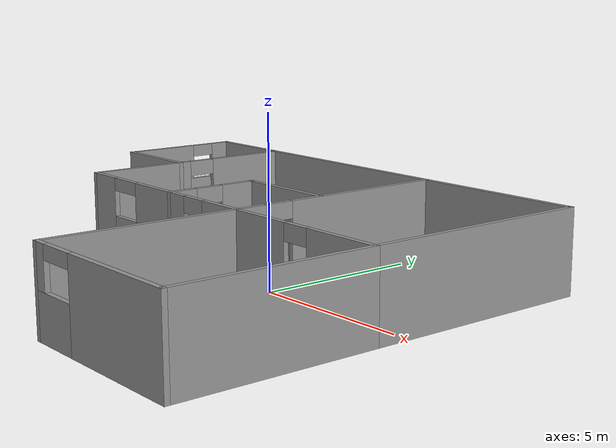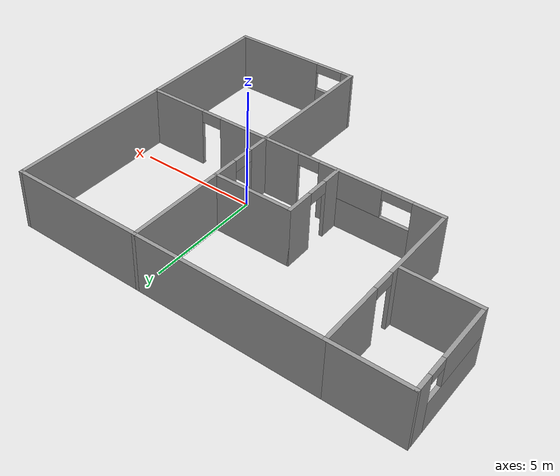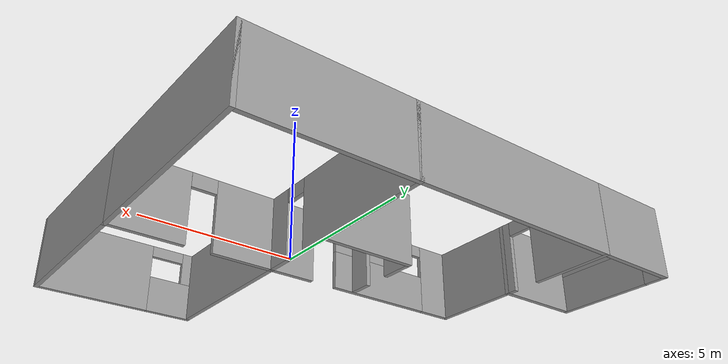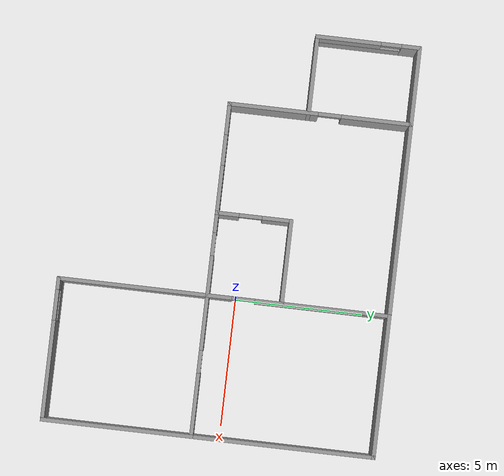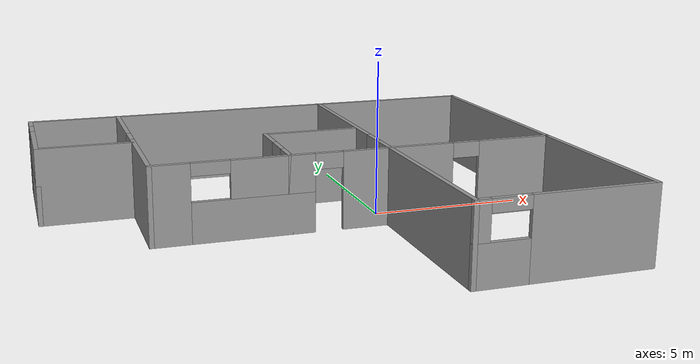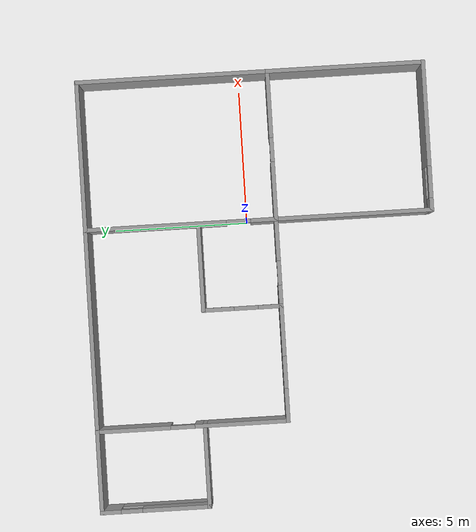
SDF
<?xml version='1.0'?>
<sdf version='1.6'>
  <model name='House'>
    <pose frame=''>-2.5 -0.45 0 0 -0 0</pose>
    <link name='Wall_100'>
      <collision name='Wall_100_Collision'>
        <geometry>
          <box>
            <size>3.38 0.15 2.5</size>
          </box>
        </geometry>
        <pose frame=''>0 0 1.25 0 -0 0</pose>
      </collision>
      <visual name='Wall_100_Visual'>
        <pose frame=''>0 0 1.25 0 -0 0</pose>
        <geometry>
          <box>
            <size>3.38 0.15 2.5</size>
          </box>
        </geometry>
        <material>
          <script>
            <uri>file://media/materials/scripts/gazebo.material</uri>
            <name>Gazebo/Grey</name>
          </script>
          <ambient>1 1 1 1</ambient>
        </material>
        <meta>
          <layer>0</layer>
        </meta>
      </visual>
      <pose frame=''>0.885 2.25 0 0 -0 0</pose>
    </link>
    <link name='Wall_103'>
      <collision name='Wall_103_Collision'>
        <geometry>
          <box>
            <size>3.15 0.15 2.5</size>
          </box>
        </geometry>
        <pose frame=''>0 0 1.25 0 -0 0</pose>
      </collision>
      <visual name='Wall_103_Visual'>
        <pose frame=''>0 0 1.25 0 -0 0</pose>
        <geometry>
          <box>
            <size>3.15 0.15 2.5</size>
          </box>
        </geometry>
        <material>
          <script>
            <uri>file://media/materials/scripts/gazebo.material</uri>
            <name>Gazebo/Grey</name>
          </script>
          <ambient>1 1 1 1</ambient>
        </material>
        <meta>
          <layer>0</layer>
        </meta>
      </visual>
      <pose frame=''>-6.5 6.45 0 0 -0 3.14159</pose>
    </link>
    <link name='Wall_107'>
      <pose frame=''>-8 4.45 0 0 0 -1.5708</pose>
      <visual name='Wall_107_Visual_0'>
        <pose frame=''>-1.68247 0 1.25 0 -0 0</pose>
        <geometry>
          <box>
            <size>0.785055 0.15 2.5</size>
          </box>
        </geometry>
        <material>
          <script>
            <uri>file://media/materials/scripts/gazebo.material</uri>
            <name>Gazebo/Grey</name>
          </script>
          <ambient>1 1 1 1</ambient>
        </material>
        <meta>
          <layer>0</layer>
        </meta>
      </visual>
      <collision name='Wall_107_Collision_0'>
        <geometry>
          <box>
            <size>0.785055 0.15 2.5</size>
          </box>
        </geometry>
        <pose frame=''>-1.68247 0 1.25 0 -0 0</pose>
      </collision>
      <visual name='Wall_107_Visual_1'>
        <pose frame=''>0.392528 0 0.65 0 -0 0</pose>
        <geometry>
          <box>
            <size>3.36495 0.15 1.3</size>
          </box>
        </geometry>
        <material>
          <script>
            <uri>file://media/materials/scripts/gazebo.material</uri>
            <name>Gazebo/Grey</name>
          </script>
          <ambient>1 1 1 1</ambient>
        </material>
        <meta>
          <layer>0</layer>
        </meta>
      </visual>
      <collision name='Wall_107_Collision_1'>
        <geometry>
          <box>
            <size>3.36495 0.15 1.3</size>
          </box>
        </geometry>
        <pose frame=''>0.392528 0 0.65 0 -0 0</pose>
      </collision>
      <visual name='Wall_107_Visual_2'>
        <pose frame=''>0.792528 0 1.9 0 -0 0</pose>
        <geometry>
          <box>
            <size>2.56494 0.15 1.2</size>
          </box>
        </geometry>
        <material>
          <script>
            <uri>file://media/materials/scripts/gazebo.material</uri>
            <name>Gazebo/Grey</name>
          </script>
          <ambient>1 1 1 1</ambient>
        </material>
        <meta>
          <layer>0</layer>
        </meta>
      </visual>
      <collision name='Wall_107_Collision_2'>
        <geometry>
          <box>
            <size>2.56494 0.15 1.2</size>
          </box>
        </geometry>
        <pose frame=''>0.792528 0 1.9 0 -0 0</pose>
      </collision>
      <visual name='Wall_107_Visual_3'>
        <pose frame=''>-0.889945 0 2.3 0 -0 0</pose>
        <geometry>
          <box>
            <size>0.8 0.15 0.4</size>
          </box>
        </geometry>
        <material>
          <script>
            <uri>file://media/materials/scripts/gazebo.material</uri>
            <name>Gazebo/Grey</name>
          </script>
          <ambient>1 1 1 1</ambient>
        </material>
        <meta>
          <layer>0</layer>
        </meta>
      </visual>
      <collision name='Wall_107_Collision_3'>
        <geometry>
          <box>
            <size>0.8 0.15 0.4</size>
          </box>
        </geometry>
        <pose frame=''>-0.889945 0 2.3 0 -0 0</pose>
      </collision>
    </link>
    <link name='Wall_109'>
      <collision name='Wall_109_Collision'>
        <geometry>
          <box>
            <size>3.15 0.15 2.5</size>
          </box>
        </geometry>
        <pose frame=''>0 0 1.25 0 -0 0</pose>
      </collision>
      <visual name='Wall_109_Visual'>
        <pose frame=''>0 0 1.25 0 -0 0</pose>
        <geometry>
          <box>
            <size>3.15 0.15 2.5</size>
          </box>
        </geometry>
        <material>
          <script>
            <uri>file://media/materials/scripts/gazebo.material</uri>
            <name>Gazebo/Grey</name>
          </script>
          <ambient>1 1 1 1</ambient>
        </material>
        <meta>
          <layer>0</layer>
        </meta>
      </visual>
      <pose frame=''>-6.5 2.45 0 0 -0 0</pose>
    </link>
    <link name='Wall_77'>
      <collision name='Wall_77_Collision'>
        <geometry>
          <box>
            <size>7.65 0.15 2.5</size>
          </box>
        </geometry>
        <pose frame=''>0 0 1.25 0 -0 0</pose>
      </collision>
      <visual name='Wall_77_Visual'>
        <pose frame=''>0 0 1.25 0 -0 0</pose>
        <geometry>
          <box>
            <size>7.65 0.15 2.5</size>
          </box>
        </geometry>
        <material>
          <script>
            <uri>file://media/materials/scripts/gazebo.material</uri>
            <name>Gazebo/Grey</name>
          </script>
          <ambient>1 1 1 1</ambient>
        </material>
        <meta>
          <layer>0</layer>
        </meta>
      </visual>
      <pose frame=''>-1.25 6.45 0 0 -0 0</pose>
    </link>
    <link name='Wall_79'>
      <collision name='Wall_79_Collision'>
        <geometry>
          <box>
            <size>5.65 0.15 2.5</size>
          </box>
        </geometry>
        <pose frame=''>0 0 1.25 0 -0 0</pose>
      </collision>
      <visual name='Wall_79_Visual'>
        <pose frame=''>0 0 1.25 0 -0 0</pose>
        <geometry>
          <box>
            <size>5.65 0.15 2.5</size>
          </box>
        </geometry>
        <material>
          <script>
            <uri>file://media/materials/scripts/gazebo.material</uri>
            <name>Gazebo/Grey</name>
          </script>
          <ambient>1 1 1 1</ambient>
        </material>
        <meta>
          <layer>0</layer>
        </meta>
      </visual>
      <pose frame=''>5.25 6.45 0 0 -0 0</pose>
    </link>
    <link name='Wall_81'>
      <collision name='Wall_81_Collision'>
        <geometry>
          <box>
            <size>7.25 0.15 2.5</size>
          </box>
        </geometry>
        <pose frame=''>0 0 1.25 0 -0 0</pose>
      </collision>
      <visual name='Wall_81_Visual'>
        <pose frame=''>0 0 1.25 0 -0 0</pose>
        <geometry>
          <box>
            <size>7.25 0.15 2.5</size>
          </box>
        </geometry>
        <material>
          <script>
            <uri>file://media/materials/scripts/gazebo.material</uri>
            <name>Gazebo/Grey</name>
          </script>
          <ambient>1 1 1 1</ambient>
        </material>
        <meta>
          <layer>0</layer>
        </meta>
      </visual>
      <pose frame=''>8 2.9 0 0 0 -1.5708</pose>
    </link>
    <link name='Wall_83'>
      <collision name='Wall_83_Collision'>
        <geometry>
          <box>
            <size>5.95 0.15 2.5</size>
          </box>
        </geometry>
        <pose frame=''>0 0 1.25 0 -0 0</pose>
      </collision>
      <visual name='Wall_83_Visual'>
        <pose frame=''>0 0 1.25 0 -0 0</pose>
        <geometry>
          <box>
            <size>5.95 0.15 2.5</size>
          </box>
        </geometry>
        <material>
          <script>
            <uri>file://media/materials/scripts/gazebo.material</uri>
            <name>Gazebo/Grey</name>
          </script>
          <ambient>1 1 1 1</ambient>
        </material>
        <meta>
          <layer>0</layer>
        </meta>
      </visual>
      <pose frame=''>8 -3.55 0 0 0 -1.5708</pose>
    </link>
    <link name='Wall_85'>
      <pose frame=''>5.25 -6.45 0 0 -0 3.14159</pose>
      <visual name='Wall_85_Visual_0'>
        <pose frame=''>-0.855868 0 1.25 0 -0 0</pose>
        <geometry>
          <box>
            <size>3.93826 0.15 2.5</size>
          </box>
        </geometry>
        <material>
          <script>
            <uri>file://media/materials/scripts/gazebo.material</uri>
            <name>Gazebo/Grey</name>
          </script>
          <ambient>1 1 1 1</ambient>
        </material>
        <meta>
          <layer>0</layer>
        </meta>
      </visual>
      <collision name='Wall_85_Collision_0'>
        <geometry>
          <box>
            <size>3.93826 0.15 2.5</size>
          </box>
        </geometry>
        <pose frame=''>-0.855868 0 1.25 0 -0 0</pose>
      </collision>
      <visual name='Wall_85_Visual_1'>
        <pose frame=''>1.96913 0 0.65 0 -0 0</pose>
        <geometry>
          <box>
            <size>1.71174 0.15 1.3</size>
          </box>
        </geometry>
        <material>
          <script>
            <uri>file://media/materials/scripts/gazebo.material</uri>
            <name>Gazebo/Grey</name>
          </script>
          <ambient>1 1 1 1</ambient>
        </material>
        <meta>
          <layer>0</layer>
        </meta>
      </visual>
      <collision name='Wall_85_Collision_1'>
        <geometry>
          <box>
            <size>1.71174 0.15 1.3</size>
          </box>
        </geometry>
        <pose frame=''>1.96913 0 0.65 0 -0 0</pose>
      </collision>
      <visual name='Wall_85_Visual_2'>
        <pose frame=''>2.56913 0 1.9 0 -0 0</pose>
        <geometry>
          <box>
            <size>0.511736 0.15 1.2</size>
          </box>
        </geometry>
        <material>
          <script>
            <uri>file://media/materials/scripts/gazebo.material</uri>
            <name>Gazebo/Grey</name>
          </script>
          <ambient>1 1 1 1</ambient>
        </material>
        <meta>
          <layer>0</layer>
        </meta>
      </visual>
      <collision name='Wall_85_Collision_2'>
        <geometry>
          <box>
            <size>0.511736 0.15 1.2</size>
          </box>
        </geometry>
        <pose frame=''>2.56913 0 1.9 0 -0 0</pose>
      </collision>
      <visual name='Wall_85_Visual_3'>
        <pose frame=''>1.71326 0 2.3 0 -0 0</pose>
        <geometry>
          <box>
            <size>1.2 0.15 0.4</size>
          </box>
        </geometry>
        <material>
          <script>
            <uri>file://media/materials/scripts/gazebo.material</uri>
            <name>Gazebo/Grey</name>
          </script>
          <ambient>1 1 1 1</ambient>
        </material>
        <meta>
          <layer>0</layer>
        </meta>
      </visual>
      <collision name='Wall_85_Collision_3'>
        <geometry>
          <box>
            <size>1.2 0.15 0.4</size>
          </box>
        </geometry>
        <pose frame=''>1.71326 0 2.3 0 -0 0</pose>
      </collision>
    </link>
    <link name='Wall_87'>
      <collision name='Wall_87_Collision'>
        <geometry>
          <box>
            <size>5.95 0.15 2.5</size>
          </box>
        </geometry>
        <pose frame=''>0 0 1.25 0 -0 0</pose>
      </collision>
      <visual name='Wall_87_Visual'>
        <pose frame=''>0 0 1.25 0 -0 0</pose>
        <geometry>
          <box>
            <size>5.95 0.15 2.5</size>
          </box>
        </geometry>
        <material>
          <script>
            <uri>file://media/materials/scripts/gazebo.material</uri>
            <name>Gazebo/Grey</name>
          </script>
          <ambient>1 1 1 1</ambient>
        </material>
        <meta>
          <layer>0</layer>
        </meta>
      </visual>
      <pose frame=''>2.5 -3.55 0 0 -0 1.5708</pose>
    </link>
    <link name='Wall_89'>
      <pose frame=''>5.25 -0.65 0 0 -0 0</pose>
      <visual name='Wall_89_Visual_0'>
        <pose frame=''>-1.72046 0 1.25 0 -0 0</pose>
        <geometry>
          <box>
            <size>2.20908 0.15 2.5</size>
          </box>
        </geometry>
        <material>
          <script>
            <uri>file://media/materials/scripts/gazebo.material</uri>
            <name>Gazebo/Grey</name>
          </script>
          <ambient>1 1 1 1</ambient>
        </material>
        <meta>
          <layer>0</layer>
        </meta>
      </visual>
      <collision name='Wall_89_Collision_0'>
        <geometry>
          <box>
            <size>2.20908 0.15 2.5</size>
          </box>
        </geometry>
        <pose frame=''>-1.72046 0 1.25 0 -0 0</pose>
      </collision>
      <visual name='Wall_89_Visual_1'>
        <pose frame=''>1.55454 0 1.25 0 -0 0</pose>
        <geometry>
          <box>
            <size>2.54092 0.15 2.5</size>
          </box>
        </geometry>
        <material>
          <script>
            <uri>file://media/materials/scripts/gazebo.material</uri>
            <name>Gazebo/Grey</name>
          </script>
          <ambient>1 1 1 1</ambient>
        </material>
        <meta>
          <layer>0</layer>
        </meta>
      </visual>
      <collision name='Wall_89_Collision_1'>
        <geometry>
          <box>
            <size>2.54092 0.15 2.5</size>
          </box>
        </geometry>
        <pose frame=''>1.55454 0 1.25 0 -0 0</pose>
      </collision>
      <visual name='Wall_89_Visual_2'>
        <pose frame=''>-0.165924 0 2.25 0 -0 0</pose>
        <geometry>
          <box>
            <size>0.9 0.15 0.5</size>
          </box>
        </geometry>
        <material>
          <script>
            <uri>file://media/materials/scripts/gazebo.material</uri>
            <name>Gazebo/Grey</name>
          </script>
          <ambient>1 1 1 1</ambient>
        </material>
        <meta>
          <layer>0</layer>
        </meta>
      </visual>
      <collision name='Wall_89_Collision_2'>
        <geometry>
          <box>
            <size>0.9 0.15 0.5</size>
          </box>
        </geometry>
        <pose frame=''>-0.165924 0 2.25 0 -0 0</pose>
      </collision>
    </link>
    <link name='Wall_91'>
      <pose frame=''>2.5 2.9 0 0 -0 1.5708</pose>
      <visual name='Wall_91_Visual_0'>
        <pose frame=''>-3.11155 0 1.25 0 -0 0</pose>
        <geometry>
          <box>
            <size>1.0269 0.15 2.5</size>
          </box>
        </geometry>
        <material>
          <script>
            <uri>file://media/materials/scripts/gazebo.material</uri>
            <name>Gazebo/Grey</name>
          </script>
          <ambient>1 1 1 1</ambient>
        </material>
        <meta>
          <layer>0</layer>
        </meta>
      </visual>
      <collision name='Wall_91_Collision_0'>
        <geometry>
          <box>
            <size>1.0269 0.15 2.5</size>
          </box>
        </geometry>
        <pose frame=''>-3.11155 0 1.25 0 -0 0</pose>
      </collision>
      <visual name='Wall_91_Visual_1'>
        <pose frame=''>0.96345 0 1.25 0 -0 0</pose>
        <geometry>
          <box>
            <size>5.3231 0.15 2.5</size>
          </box>
        </geometry>
        <material>
          <script>
            <uri>file://media/materials/scripts/gazebo.material</uri>
            <name>Gazebo/Grey</name>
          </script>
          <ambient>1 1 1 1</ambient>
        </material>
        <meta>
          <layer>0</layer>
        </meta>
      </visual>
      <collision name='Wall_91_Collision_1'>
        <geometry>
          <box>
            <size>5.3231 0.15 2.5</size>
          </box>
        </geometry>
        <pose frame=''>0.96345 0 1.25 0 -0 0</pose>
      </collision>
      <visual name='Wall_91_Visual_2'>
        <pose frame=''>-2.1481 0 2.25 0 -0 0</pose>
        <geometry>
          <box>
            <size>0.9 0.15 0.5</size>
          </box>
        </geometry>
        <material>
          <script>
            <uri>file://media/materials/scripts/gazebo.material</uri>
            <name>Gazebo/Grey</name>
          </script>
          <ambient>1 1 1 1</ambient>
        </material>
        <meta>
          <layer>0</layer>
        </meta>
      </visual>
      <collision name='Wall_91_Collision_2'>
        <geometry>
          <box>
            <size>0.9 0.15 0.5</size>
          </box>
        </geometry>
        <pose frame=''>-2.1481 0 2.25 0 -0 0</pose>
      </collision>
    </link>
    <link name='Wall_93'>
      <pose frame=''>-5 2.9 0 0 0 -1.5708</pose>
      <visual name='Wall_93_Visual_0'>
        <pose frame=''>-2.22291 0 1.25 0 -0 0</pose>
        <geometry>
          <box>
            <size>2.80417 0.15 2.5</size>
          </box>
        </geometry>
        <material>
          <script>
            <uri>file://media/materials/scripts/gazebo.material</uri>
            <name>Gazebo/Grey</name>
          </script>
          <ambient>1 1 1 1</ambient>
        </material>
        <meta>
          <layer>0</layer>
        </meta>
      </visual>
      <collision name='Wall_93_Collision_0'>
        <geometry>
          <box>
            <size>2.80417 0.15 2.5</size>
          </box>
        </geometry>
        <pose frame=''>-2.22291 0 1.25 0 -0 0</pose>
      </collision>
      <visual name='Wall_93_Visual_1'>
        <pose frame=''>1.85209 0 1.25 0 -0 0</pose>
        <geometry>
          <box>
            <size>3.54583 0.15 2.5</size>
          </box>
        </geometry>
        <material>
          <script>
            <uri>file://media/materials/scripts/gazebo.material</uri>
            <name>Gazebo/Grey</name>
          </script>
          <ambient>1 1 1 1</ambient>
        </material>
        <meta>
          <layer>0</layer>
        </meta>
      </visual>
      <collision name='Wall_93_Collision_1'>
        <geometry>
          <box>
            <size>3.54583 0.15 2.5</size>
          </box>
        </geometry>
        <pose frame=''>1.85209 0 1.25 0 -0 0</pose>
      </collision>
      <visual name='Wall_93_Visual_2'>
        <pose frame=''>-0.370826 0 2.25 0 -0 0</pose>
        <geometry>
          <box>
            <size>0.9 0.15 0.5</size>
          </box>
        </geometry>
        <material>
          <script>
            <uri>file://media/materials/scripts/gazebo.material</uri>
            <name>Gazebo/Grey</name>
          </script>
          <ambient>1 1 1 1</ambient>
        </material>
        <meta>
          <layer>0</layer>
        </meta>
      </visual>
      <collision name='Wall_93_Collision_2'>
        <geometry>
          <box>
            <size>0.9 0.15 0.5</size>
          </box>
        </geometry>
        <pose frame=''>-0.370826 0 2.25 0 -0 0</pose>
      </collision>
    </link>
    <link name='Wall_95'>
      <pose frame=''>-1.25 -0.65 0 0 -0 0</pose>
      <visual name='Wall_95_Visual_0'>
        <pose frame=''>-3.1837 0 1.25 0 -0 0</pose>
        <geometry>
          <box>
            <size>1.2826 0.15 2.5</size>
          </box>
        </geometry>
        <material>
          <script>
            <uri>file://media/materials/scripts/gazebo.material</uri>
            <name>Gazebo/Grey</name>
          </script>
          <ambient>1 1 1 1</ambient>
        </material>
        <meta>
          <layer>0</layer>
        </meta>
      </visual>
      <collision name='Wall_95_Collision_0'>
        <geometry>
          <box>
            <size>1.2826 0.15 2.5</size>
          </box>
        </geometry>
        <pose frame=''>-3.1837 0 1.25 0 -0 0</pose>
      </collision>
      <visual name='Wall_95_Visual_1'>
        <pose frame=''>3.01052 0 1.25 0 -0 0</pose>
        <geometry>
          <box>
            <size>1.62897 0.15 2.5</size>
          </box>
        </geometry>
        <material>
          <script>
            <uri>file://media/materials/scripts/gazebo.material</uri>
            <name>Gazebo/Grey</name>
          </script>
          <ambient>1 1 1 1</ambient>
        </material>
        <meta>
          <layer>0</layer>
        </meta>
      </visual>
      <collision name='Wall_95_Collision_1'>
        <geometry>
          <box>
            <size>1.62897 0.15 2.5</size>
          </box>
        </geometry>
        <pose frame=''>3.01052 0 1.25 0 -0 0</pose>
      </collision>
      <visual name='Wall_95_Visual_2'>
        <pose frame=''>-0.623182 0 0.65 0 -0 0</pose>
        <geometry>
          <box>
            <size>3.83843 0.15 1.3</size>
          </box>
        </geometry>
        <material>
          <script>
            <uri>file://media/materials/scripts/gazebo.material</uri>
            <name>Gazebo/Grey</name>
          </script>
          <ambient>1 1 1 1</ambient>
        </material>
        <meta>
          <layer>0</layer>
        </meta>
      </visual>
      <collision name='Wall_95_Collision_2'>
        <geometry>
          <box>
            <size>3.83843 0.15 1.3</size>
          </box>
        </geometry>
        <pose frame=''>-0.623182 0 0.65 0 -0 0</pose>
      </collision>
      <visual name='Wall_95_Visual_3'>
        <pose frame=''>-0.023182 0 1.9 0 -0 0</pose>
        <geometry>
          <box>
            <size>2.63843 0.15 1.2</size>
          </box>
        </geometry>
        <material>
          <script>
            <uri>file://media/materials/scripts/gazebo.material</uri>
            <name>Gazebo/Grey</name>
          </script>
          <ambient>1 1 1 1</ambient>
        </material>
        <meta>
          <layer>0</layer>
        </meta>
      </visual>
      <collision name='Wall_95_Collision_3'>
        <geometry>
          <box>
            <size>2.63843 0.15 1.2</size>
          </box>
        </geometry>
        <pose frame=''>-0.023182 0 1.9 0 -0 0</pose>
      </collision>
      <visual name='Wall_95_Visual_4'>
        <pose frame=''>1.74603 0 2.25 0 -0 0</pose>
        <geometry>
          <box>
            <size>0.9 0.15 0.5</size>
          </box>
        </geometry>
        <material>
          <script>
            <uri>file://media/materials/scripts/gazebo.material</uri>
            <name>Gazebo/Grey</name>
          </script>
          <ambient>1 1 1 1</ambient>
        </material>
        <meta>
          <layer>0</layer>
        </meta>
      </visual>
      <collision name='Wall_95_Collision_4'>
        <geometry>
          <box>
            <size>0.9 0.15 0.5</size>
          </box>
        </geometry>
        <pose frame=''>1.74603 0 2.25 0 -0 0</pose>
      </collision>
      <visual name='Wall_95_Visual_5'>
        <pose frame=''>-1.9424 0 2.3 0 -0 0</pose>
        <geometry>
          <box>
            <size>1.2 0.15 0.4</size>
          </box>
        </geometry>
        <material>
          <script>
            <uri>file://media/materials/scripts/gazebo.material</uri>
            <name>Gazebo/Grey</name>
          </script>
          <ambient>1 1 1 1</ambient>
        </material>
        <meta>
          <layer>0</layer>
        </meta>
      </visual>
      <collision name='Wall_95_Collision_5'>
        <geometry>
          <box>
            <size>1.2 0.15 0.4</size>
          </box>
        </geometry>
        <pose frame=''>-1.9424 0 2.3 0 -0 0</pose>
      </collision>
    </link>
    <link name='Wall_97'>
      <pose frame=''>-0.73 0.8 0 0 -0 1.5708</pose>
      <visual name='Wall_97_Visual_0'>
        <pose frame=''>-1.05653 0 1.25 0 -0 0</pose>
        <geometry>
          <box>
            <size>0.936939 0.15 2.5</size>
          </box>
        </geometry>
        <material>
          <script>
            <uri>file://media/materials/scripts/gazebo.material</uri>
            <name>Gazebo/Grey</name>
          </script>
          <ambient>1 1 1 1</ambient>
        </material>
        <meta>
          <layer>0</layer>
        </meta>
      </visual>
      <collision name='Wall_97_Collision_0'>
        <geometry>
          <box>
            <size>0.936939 0.15 2.5</size>
          </box>
        </geometry>
        <pose frame=''>-1.05653 0 1.25 0 -0 0</pose>
      </collision>
      <visual name='Wall_97_Visual_1'>
        <pose frame=''>0.918469 0 1.25 0 -0 0</pose>
        <geometry>
          <box>
            <size>1.21306 0.15 2.5</size>
          </box>
        </geometry>
        <material>
          <script>
            <uri>file://media/materials/scripts/gazebo.material</uri>
            <name>Gazebo/Grey</name>
          </script>
          <ambient>1 1 1 1</ambient>
        </material>
        <meta>
          <layer>0</layer>
        </meta>
      </visual>
      <collision name='Wall_97_Collision_1'>
        <geometry>
          <box>
            <size>1.21306 0.15 2.5</size>
          </box>
        </geometry>
        <pose frame=''>0.918469 0 1.25 0 -0 0</pose>
      </collision>
      <visual name='Wall_97_Visual_2'>
        <pose frame=''>-0.138061 0 2.25 0 -0 0</pose>
        <geometry>
          <box>
            <size>0.9 0.15 0.5</size>
          </box>
        </geometry>
        <material>
          <script>
            <uri>file://media/materials/scripts/gazebo.material</uri>
            <name>Gazebo/Grey</name>
          </script>
          <ambient>1 1 1 1</ambient>
        </material>
        <meta>
          <layer>0</layer>
        </meta>
      </visual>
      <collision name='Wall_97_Collision_2'>
        <geometry>
          <box>
            <size>0.9 0.15 0.5</size>
          </box>
        </geometry>
        <pose frame=''>-0.138061 0 2.25 0 -0 0</pose>
      </collision>
    </link>
    <static>1</static>
  </model>
</sdf>
